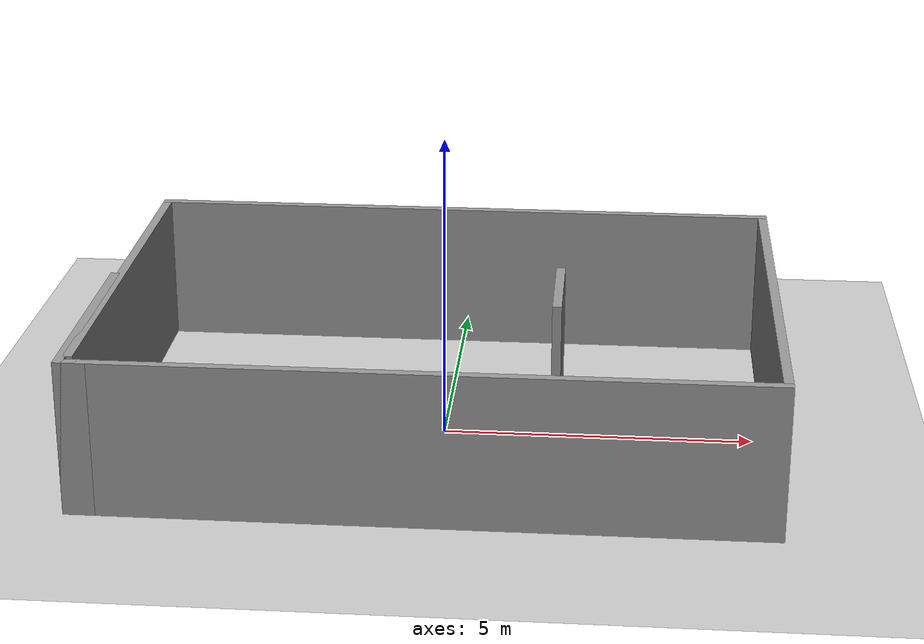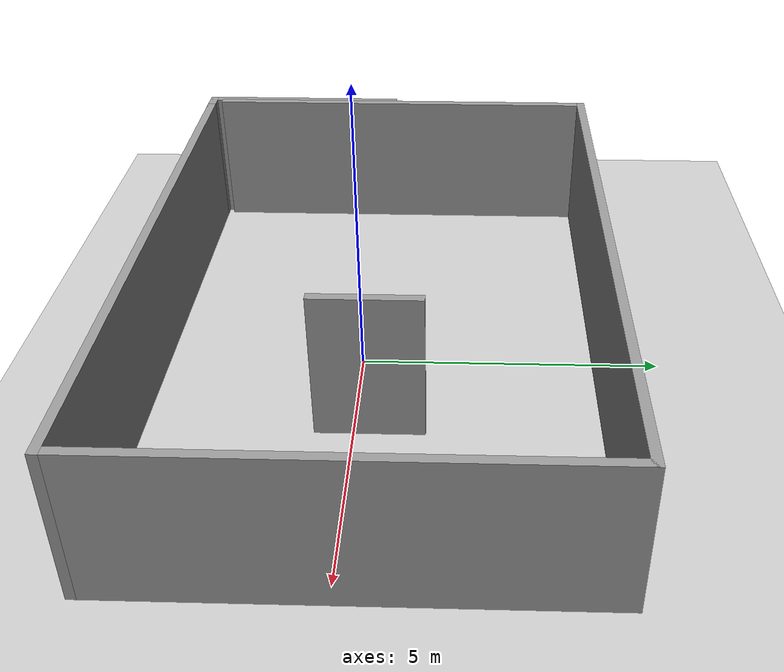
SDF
<sdf version="1.6">
 <world name="default">
  <light name="sun" type="directional">
   <pose>0 0 10 0 -0 0</pose>
   <diffuse>0.8 0.8 0.8 1</diffuse>
   <specular>0.2 0.2 0.2 1</specular>
   <attenuation>
    <range>1000</range>
    <constant>0.9</constant>
    <linear>0.01</linear>
    <quadratic>0.001</quadratic>
   </attenuation>
   <direction>-0.5 0.1 -0.9</direction>
  </light>
  <model name="ground_plane">
   <static>1</static>
   <link name="link">
    <collision name="collision">
     <geometry><plane><normal>0 0 1</normal><size>100 100</size></plane></geometry>
     <surface>
      <contact><collide_bitmask>65535</collide_bitmask></contact>
      <friction><ode><mu>100</mu><mu2>50</mu2></ode></friction>
     </surface>
    </collision>
    <visual name="visual">
     <cast_shadows>0</cast_shadows>
     <geometry><plane><normal>0 0 1</normal><size>100 100</size></plane></geometry>
     <material>
      <script><uri>file://media/materials/scripts/gazebo.material</uri><name>Gazebo/Grey</name></script>
     </material>
    </visual>
   </link>
  </model>
  <gravity>0 0 -9.8</gravity>
  <magnetic_field>6e-06 2.3e-05 -4.2e-05</magnetic_field>
  <atmosphere type="adiabatic"/>
  <physics name="default_physics" default="0" type="ode">
   <max_step_size>0.001</max_step_size>
   <real_time_factor>1</real_time_factor>
   <real_time_update_rate>1000</real_time_update_rate>
  </physics>
  <scene><ambient>0.4 0.4 0.4 1</ambient><background>0.7 0.7 0.7 1</background><shadows>1</shadows></scene>
  <audio><device>default</device></audio>
  <spherical_coordinates>
   <surface_model>EARTH_WGS84</surface_model>
   <latitude_deg>0</latitude_deg>
   <longitude_deg>0</longitude_deg>
   <elevation>0</elevation>
   <heading_deg>0</heading_deg>
  </spherical_coordinates>
  <model name="Wall1">
   <pose>-0.092789 0.297865 0 0 -0 0</pose>
   <link name="Wall_10">
    <collision name="Wall_10_Collision">
     <geometry><box><size>10.5 0.15 2.5</size></box></geometry>
     <pose>0 0 1.25 0 -0 0</pose>
    </collision>
    <visual name="Wall_10_Visual">
     <pose>0 0 1.25 0 -0 0</pose>
     <geometry><box><size>10.5 0.15 2.5</size></box></geometry>
     <material>
      <script><uri>file://media/materials/scripts/gazebo.material</uri><name>Gazebo/Grey</name></script>
      <ambient>1 1 1 1</ambient>
     </material>
     <meta><layer>0</layer></meta>
    </visual>
    <pose>0.175 -3.675 0 0 -0 3.14159</pose>
   </link>
   <link name="Wall_11">
    <collision name="Wall_11_Collision">
     <geometry><box><size>0.5 0.15 2.5</size></box></geometry>
     <pose>0 0 1.25 0 -0 0</pose>
    </collision>
    <visual name="Wall_11_Visual">
     <pose>0 0 1.25 0 -0 0</pose>
     <geometry><box><size>0.5 0.15 2.5</size></box></geometry>
     <material>
      <script><uri>file://media/materials/scripts/gazebo.material</uri><name>Gazebo/Grey</name></script>
      <ambient>1 1 1 1</ambient>
     </material>
     <meta><layer>0</layer></meta>
    </visual>
    <pose>-5.175 -3.675 0 0 -0 3.14159</pose>
   </link>
   <link name="Wall_12">
    <collision name="Wall_12_Collision">
     <geometry><box><size>3.75 0.15 2.5</size></box></geometry>
     <pose>0 0 1.25 0 -0 0</pose>
    </collision>
    <visual name="Wall_12_Visual">
     <pose>0 0 1.25 0 -0 0</pose>
     <geometry><box><size>3.75 0.15 2.5</size></box></geometry>
     <material>
      <script><uri>file://media/materials/scripts/gazebo.material</uri><name>Gazebo/Grey</name></script>
      <ambient>1 1 1 1</ambient>
     </material>
     <meta><layer>0</layer></meta>
    </visual>
    <pose>-5.35 -1.875 0 0 -0 1.5708</pose>
   </link>
   <link name="Wall_15">
    <collision name="Wall_15_Collision">
     <geometry><box><size>1.75 0.15 2.5</size></box></geometry>
     <pose>0 0 1.25 0 -0 0</pose>
    </collision>
    <visual name="Wall_15_Visual">
     <pose>0 0 1.25 0 -0 0</pose>
     <geometry><box><size>1.75 0.15 2.5</size></box></geometry>
     <material>
      <script><uri>file://media/materials/scripts/gazebo.material</uri><name>Gazebo/Grey</name></script>
      <ambient>1 1 1 1</ambient>
     </material>
     <meta><layer>0</layer></meta>
    </visual>
    <pose>1.91468 -0.037848 0 0 -0 -1.5708</pose>
   </link>
   <link name="Wall_7">
    <collision name="Wall_7_Collision">
     <geometry><box><size>7.25 0.15 2.5</size></box></geometry>
     <pose>0 0 1.25 0 -0 0</pose>
    </collision>
    <visual name="Wall_7_Visual">
     <pose>0 0 1.25 0 -0 0</pose>
     <geometry><box><size>7.25 0.15 2.5</size></box></geometry>
     <material>
      <script><uri>file://media/materials/scripts/gazebo.material</uri><name>Gazebo/Grey</name></script>
      <ambient>1 1 1 1</ambient>
     </material>
     <meta><layer>0</layer></meta>
    </visual>
    <pose>-5.25 0.125 0 0 -0 1.5708</pose>
   </link>
   <link name="Wall_8">
    <collision name="Wall_8_Collision">
     <geometry><box><size>10.75 0.15 2.5</size></box></geometry>
     <pose>0 0 1.25 0 -0 0</pose>
    </collision>
    <visual name="Wall_8_Visual">
     <pose>0 0 1.25 0 -0 0</pose>
     <geometry><box><size>10.75 0.15 2.5</size></box></geometry>
     <material>
      <script><uri>file://media/materials/scripts/gazebo.material</uri><name>Gazebo/Grey</name></script>
      <ambient>1 1 1 1</ambient>
     </material>
     <meta><layer>0</layer></meta>
    </visual>
    <pose>0.05 3.675 0 0 -0 0</pose>
   </link>
   <link name="Wall_9">
    <collision name="Wall_9_Collision">
     <geometry><box><size>7.5 0.15 2.5</size></box></geometry>
     <pose>0 0 1.25 0 -0 0</pose>
    </collision>
    <visual name="Wall_9_Visual">
     <pose>0 0 1.25 0 -0 0</pose>
     <geometry><box><size>7.5 0.15 2.5</size></box></geometry>
     <material>
      <script><uri>file://media/materials/scripts/gazebo.material</uri><name>Gazebo/Grey</name></script>
      <ambient>1 1 1 1</ambient>
     </material>
     <meta><layer>0</layer></meta>
    </visual>
    <pose>5.35 0 0 0 -0 -1.5708</pose>
   </link>
   <static>1</static>
  </model>
 </world>
</sdf>
